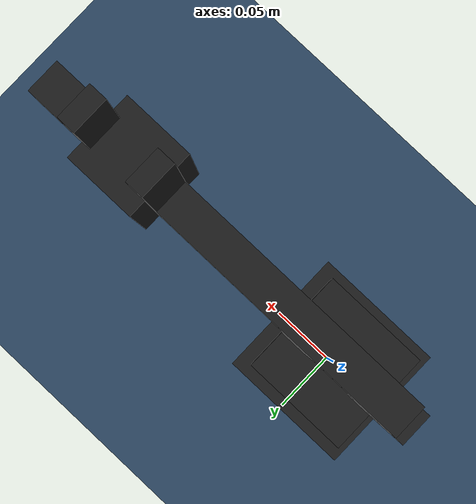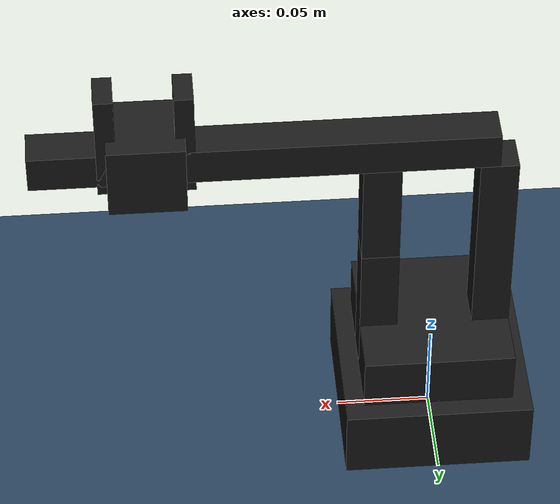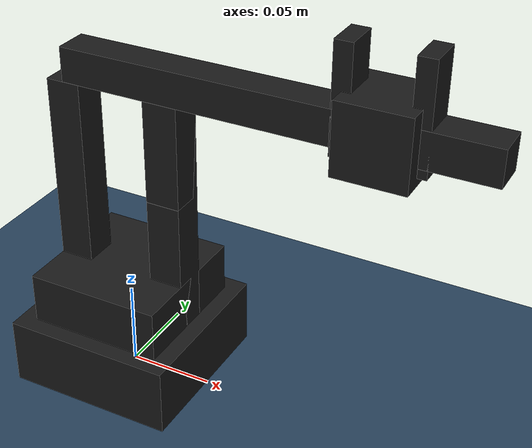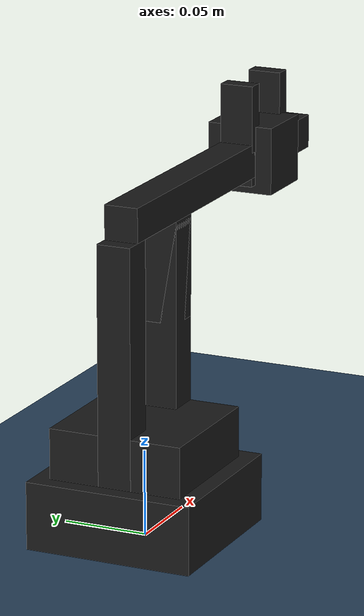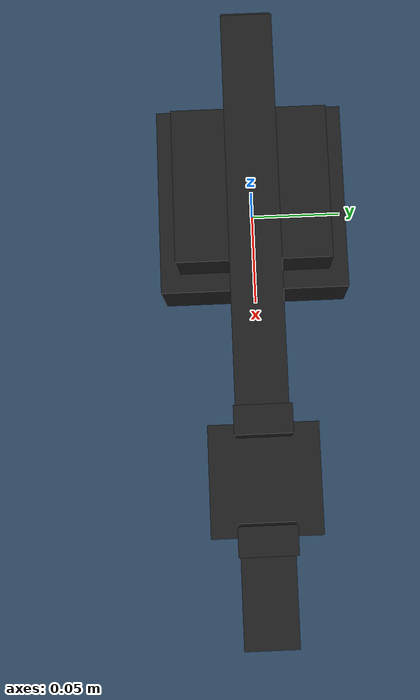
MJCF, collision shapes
<mujoco model="eezybotarm scene">
  <include file="eezybotarm.xml"/>

  <statistic center="0 -0.2 0.1" extent="0.4"/>

  <visual>
    <headlight diffuse="0.6 0.6 0.6" ambient="0.3 0.3 0.3" specular="0 0 0"/>
    <rgba haze="0.15 0.25 0.35 1"/>
    <global azimuth="140" elevation="-30"/>
  </visual>

  <asset>
    <texture type="skybox" builtin="gradient" rgb1="0.3 0.5 0.7" rgb2="0 0 0" width="512" height="3072"/>
    <texture type="2d" name="groundplane" builtin="checker" mark="edge" rgb1="0.2 0.3 0.4" rgb2="0.1 0.2 0.3"
      markrgb="0.8 0.8 0.8" width="300" height="300"/>
    <material name="groundplane" texture="groundplane" texuniform="true" texrepeat="5 5" reflectance="0.2"/>
  </asset>

  <worldbody>
    <light pos="0 0 1.5" dir="0 0 -1" directional="true"/>
    <geom name="floor" size="0 0 0.05" type="plane" material="groundplane"/>
  </worldbody>
</mujoco>

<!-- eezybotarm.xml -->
<mujoco model="eezybotarm">
  <compiler angle="radian" meshdir="assets" autolimits="true"/>

  <option cone="elliptic" impratio="10"/>

  <default>
    <default class="eezyarm">
      <material specular="0.5" shininess="0.25"/>
      <joint frictionloss="0.1" armature="0.01"/>
      <position kp="50" dampratio="1" forcerange="-25 25"/>

      <default class="visual">
        <geom type="mesh" contype="0" conaffinity="0" group="1" material="orange"/>
      </default>

      <default class="collision">
        <geom type="box" group="3" material="black" solimp="2 1 0.01" solref="0.01 1"/>
      </default>

      <default class="rotation">
        <joint axis="0 0 1" range="-3.14 3.14"/>
      </default>

      <default class="pitch">
        <joint axis="1 0 0" range="-1.57 1.57"/>
      </default>

      <default class="slide">
        <joint type="slide" axis="0 0 1" range="0 0.05"/>
      </default>
    </default>
  </default>

  <asset>
    <!-- Materials -->
    <material name="orange" rgba="1.0 0.331 0.0 1.0" specular="0.1" shininess="0.1"/>
    <material name="black" rgba="0.1 0.1 0.1 1.0" specular="0.1" shininess="0.1"/>

    <!-- Meshes -->
    <mesh name="base_piece" file="EBA_01.00.001.obj"/>
    <mesh name="vertical_arm" file="EBA_01.00.002_vertical_drive_arm.obj"/>
    <mesh name="link" file="EBA_01.00.003_link.obj"/>
    <mesh name="forward_arm" file="EBA_01.00.004_forward_drive_arm.obj"/>
    <mesh name="horizontal_arm" file="EBA_01.00.005_horizontal_arm.obj"/>
    <mesh name="claw_support" file="EBA_01.00.012_R01_claw_support.obj"/>
    <mesh name="right_finger" file="EBA_01.00.013_R01_right_finger.obj"/>
    <mesh name="left_finger" file="EBA_01.00.014_R01_left_finger.obj"/>
    <mesh name="basement" file="EBA_01.00.010_basement.obj"/>
    <mesh name="round_plate" file="EBA_01.00.011_round_plate.obj"/>
  </asset>

  <worldbody>
    <!-- Base Structure -->
    <body name="basement" childclass="eezyarm">
      <geom type="mesh" mesh="basement" class="visual"/>
      <geom type="box" size="0.05 0.05 0.02" pos="0 0 0.02" class="collision"/>

      <body name="round_plate" pos="0 0 0.04">
        <geom type="mesh" mesh="round_plate" class="visual"/>
        <geom type="cylinder" size="0.04 0.005" class="collision"/>

        <!-- Main Rotation Base -->
        <body name="base_piece" pos="0 0 0.01">
          <geom type="mesh" mesh="base_piece" class="visual"/>
          <geom type="box" size="0.04 0.04 0.02" class="collision"/>
          <joint name="base_rotation" class="rotation"/>

          <!-- Vertical Arm Assembly -->
          <body name="vertical_arm" pos="0.03 0 0.02">
            <geom type="mesh" mesh="vertical_arm" class="visual"/>
            <geom type="box" size="0.01 0.01 0.07" pos="0 0 0.04" class="collision"/>
            <joint name="shoulder_pitch" class="pitch"/>

            <body name="link" pos="0 0 0.08">
              <geom type="mesh" mesh="link" class="visual"/>
              <geom type="box" size="0.01 0.01 0.03" class="collision"/>
              <joint name="elbow_pitch" class="pitch"/>

              <body name="horizontal_arm" pos="0 0 0.04">
                <geom type="mesh" mesh="horizontal_arm" class="visual"/>
                <geom type="box" size="0.12 0.01 0.01" pos="0.06 0 0" class="collision"/>
                <joint name="wrist_pitch" class="pitch"/>

                <!-- Gripper Assembly -->
                <body name="claw_support" pos="0.12 0 0">
                  <geom type="mesh" mesh="claw_support" class="visual"/>
                  <geom type="box" size="0.02 0.02 0.02" class="collision"/>
                  <joint name="wrist_roll" class="rotation"/>

                  <!-- Fingers -->
                  <body name="right_finger" pos="0.02 0 0">
                    <geom type="mesh" mesh="right_finger" class="visual"/>
                    <geom type="box" size="0.005 0.01 0.03" pos="0 0 0.015" class="collision"/>
                    <joint name="gripper" class="slide"/>
                  </body>

                  <body name="left_finger" pos="-0.02 0 0">
                    <geom type="mesh" mesh="left_finger" class="visual"/>
                    <geom type="box" size="0.005 0.01 0.03" pos="0 0 0.015" class="collision"/>
                    <joint name="gripper2" class="slide"/>
                  </body>
                </body>
              </body>
            </body>
          </body>

          <!-- Forward Arm Assembly -->
          <body name="forward_arm" pos="-0.03 0 0.02">
            <geom type="mesh" mesh="forward_arm" class="visual"/>
            <geom type="box" size="0.01 0.01 0.07" pos="0 0 0.04" class="collision"/>
            <joint name="aux_pitch" class="pitch"/>
          </body>
        </body>
      </body>
    </body>
  </worldbody>

  <actuator>
    <position name="base_rot" joint="base_rotation"/>
    <position name="shoulder" joint="shoulder_pitch"/>
    <position name="elbow" joint="elbow_pitch"/>
    <position name="wrist_p" joint="wrist_pitch"/>
    <position name="wrist_r" joint="wrist_roll"/>
    <position name="gripper" joint="gripper" ctrlrange="-0.05 0.05"/>
  </actuator>

  <contact>
    <exclude body1="basement" body2="base_piece"/>
  </contact>
</mujoco>
